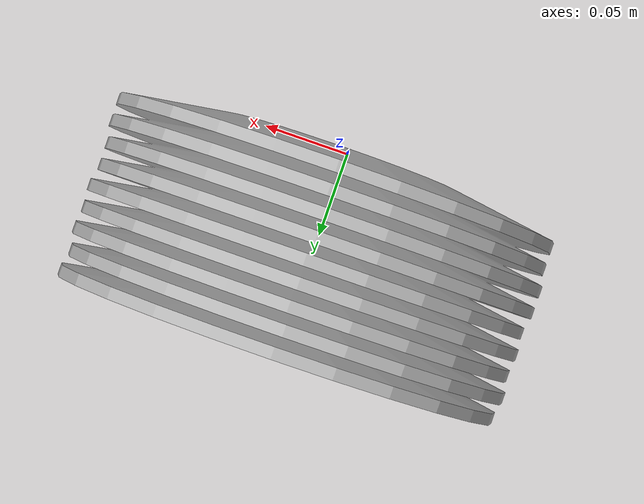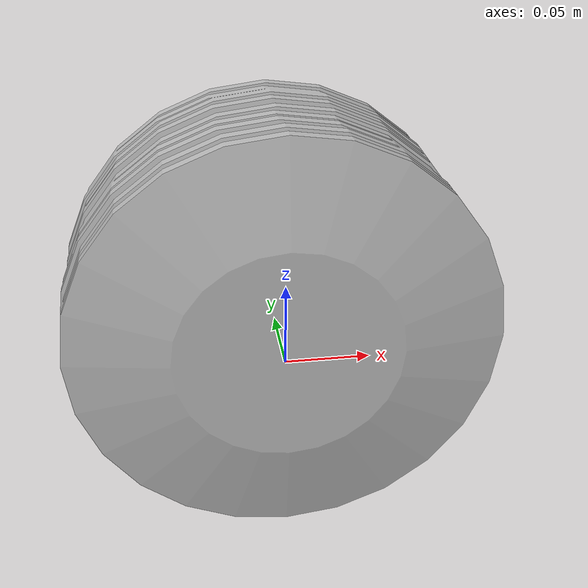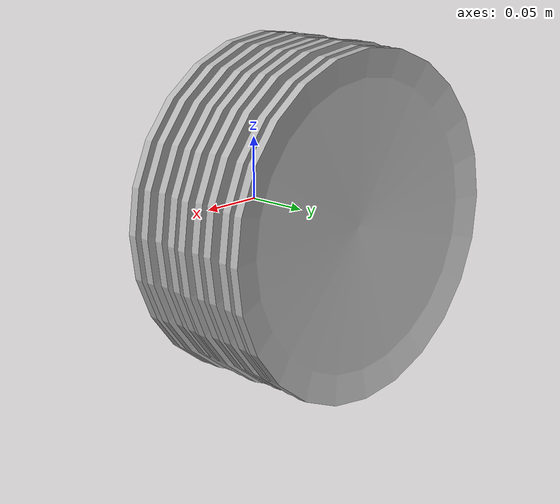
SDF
<?xml version="1.0" ?>
<sdf version="1.4">
  <model name="shelf2_dish2_2a">
    <link name="body">
      <pose>0 0 0 0 0 0</pose>
      <inertial>
        <pose>   0.002222   0.060502   0.000333 0 0 0</pose>
        <mass>0.5</mass>
        <inertia>
          <ixx>0.01</ixx>
          <ixy>0</ixy>
          <ixz>0</ixz>
          <iyy>0.01</iyy>
          <iyz>0</iyz>
          <izz>0.01</izz>
        </inertia>
      </inertial>
      <collision name="collision">
        <geometry>
          <mesh>
            <uri>model://bookshelf/shelf2_items/dish2_2a/dish2_2a.dae</uri>
          </mesh>
        </geometry>
      </collision>
      <visual name="visual">
        <geometry>
          <mesh>
            <uri>model://bookshelf/shelf2_items/dish2_2a/dish2_2a.dae</uri>
          </mesh>
        </geometry>
      </visual>
    </link>
  </model>
</sdf>
